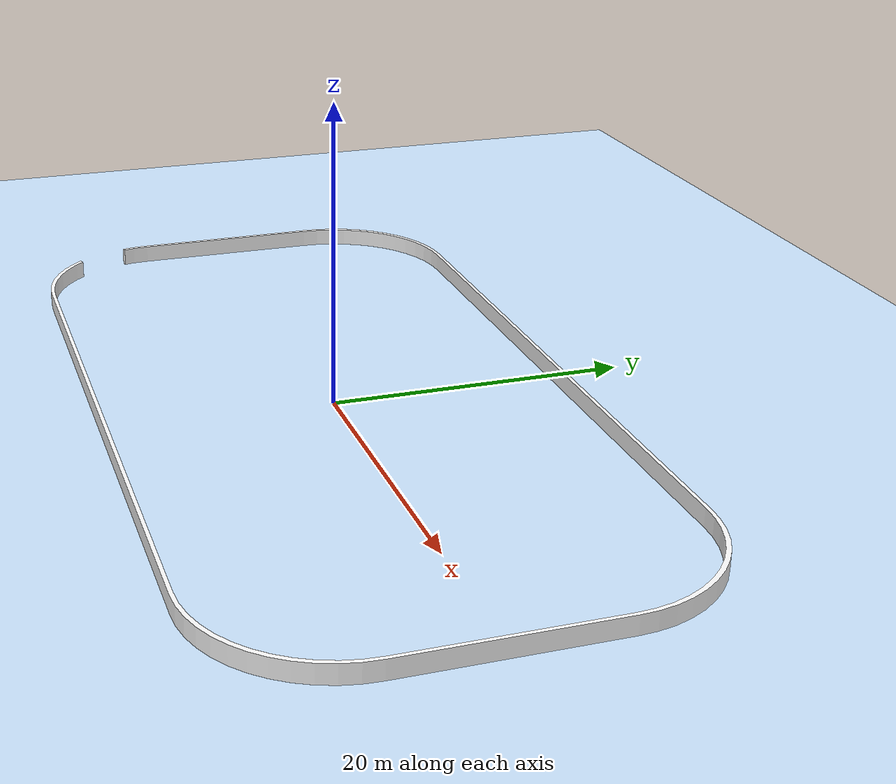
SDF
<?xml version="1.0" ?>
<sdf version="1.8">
  <world name="ice_rink">

    <scene>
      <grid>false</grid>
    </scene>

    <!-- https://gazebosim.org/docs/latest/sdf_worlds/#physics -->
    <physics name="1ms" type="ignored">
      <max_step_size>0.001</max_step_size>
      <real_time_factor>1.0</real_time_factor>
    </physics>

    <!-- https://gazebosim.org/docs/latest/sdf_worlds/#plugins -->
    <plugin
      filename="gz-sim-physics-system"
      name="gz::sim::systems::Physics">
    </plugin>
    <plugin
      filename="gz-sim-user-commands-system"
      name="gz::sim::systems::UserCommands">
    </plugin>
    <plugin
      filename="gz-sim-scene-broadcaster-system"
      name="gz::sim::systems::SceneBroadcaster">
    </plugin>

    <plugin filename="libgz-sim-imu-system.so" name="gz::sim::systems::Imu"/>

    <plugin filename="libgz-sim-sensors-system.so" name="gz::sim::systems::Sensors">
      <render_engine>ogre2</render_engine>
    </plugin>

    <light type="directional" name="sun">
      <cast_shadows>true</cast_shadows>
      <pose>0 0 10 0 0 0</pose>
      <diffuse>0.8 0.8 0.8 1</diffuse>
      <specular>0.2 0.2 0.2 1</specular>
      <attenuation>
        <range>1000</range>
        <constant>0.9</constant>
        <linear>0.01</linear>
        <quadratic>0.001</quadratic>
      </attenuation>
      <direction>-0.5 0.1 -0.9</direction>
    </light>

    <!-- Defining ground plane as a sheet of ice with friction coefficient 0.01 -->
    <model name="ground_plane">
      <static>true</static>
      <link name="link">
        <collision name="collision">
          <geometry>
            <plane>
              <normal>0 0 1</normal>
              <size>60 30</size> </plane>
          </geometry>
          <surface>
            <friction>
              <ode>
                <mu>1.0</mu>
                <mu2>1.0</mu2>
              </ode>
            </friction>
          </surface>
        </collision>
        <visual name="visual">
          <geometry>
            <plane>
              <normal>0 0 1</normal>
              <size>60 30</size>
            </plane>
          </geometry>
          <material>
            <ambient>0.8 0.9 1.0 1</ambient> <diffuse>0.8 0.9 1.0 1</diffuse>
            <specular>0.1 0.1 0.1 1</specular>
          </material>
        </visual>
      </link>
    </model>

    <model name="rink_mesh">
      <static>true</static>
      <pose>0 0 0 0 0 0</pose> <link name="link">

        <visual name="visual">
          <geometry>
            <mesh>
              <uri>model://ice_resurfacer_gazebo/meshes/just_rink_20260612.stl</uri>
              <scale>1 1 1</scale> </mesh>
          </geometry>
          <material>
            <ambient>1 1 1 1</ambient>
            <diffuse>1 1 1 1</diffuse>
          </material>
        </visual>

        <collision name="collision">
          <geometry>
            <mesh>
              <uri>model://ice_resurfacer_gazebo/meshes/just_rink_20260612.stl</uri>
              <scale>1 1 1</scale>
            </mesh>
          </geometry>
        </collision>
      </link>
    </model>
  </world>
</sdf>
